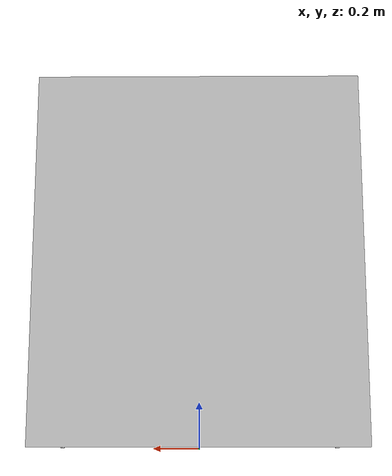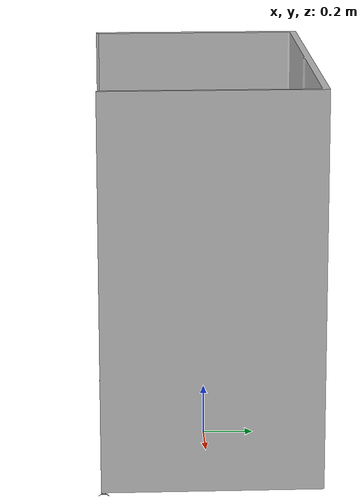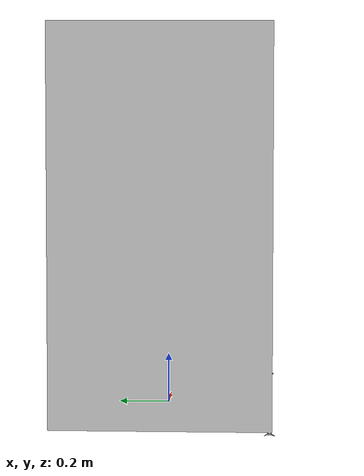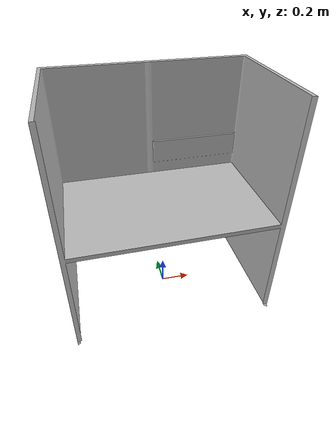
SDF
<?xml version='1.0' encoding='utf-8'?>
<sdf version="1.6">
  <model name="BigCubicle">
   <static>true</static>
    <link name="body">
      <pose>0 0 0 0 0 0</pose>

      <visual name="visual">
        <geometry>
          <mesh>
            <uri>model://BigCubicle/meshes/BigCubicle.obj</uri>
          </mesh>
        </geometry>
      </visual>

      <collision name="collision">
        <geometry>
          <mesh>
            <uri>model://BigCubicle/meshes/BigCubicle_Col.obj</uri>
          </mesh>
        </geometry>
      </collision>

    </link>
  </model>
</sdf>
